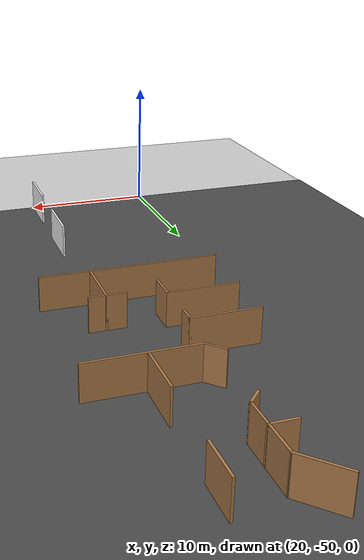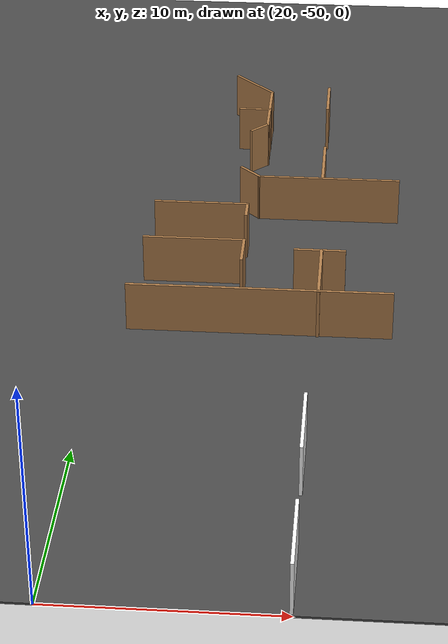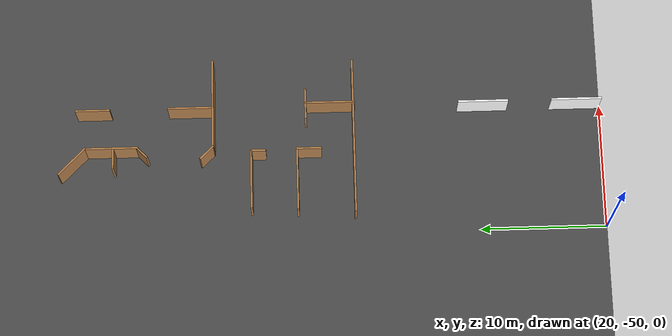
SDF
<sdf version="1.6">
 <world name="default">
  <model name="ground_plane">
   <static>1</static>
   <link name="link">
    <collision name="collision">
     <geometry><plane><normal>0 0 1</normal><size>100 100</size></plane></geometry>
     <surface><friction><ode><mu>100</mu><mu2>50</mu2></ode></friction></surface>
    </collision>
    <visual name="visual">
     <cast_shadows>0</cast_shadows>
     <geometry><plane><normal>0 0 1</normal><size>100 100</size></plane></geometry>
     <material>
      <script><uri>file://media/materials/scripts/gazebo.material</uri><name>Gazebo/Grey</name></script>
     </material>
    </visual>
   </link>
  </model>
  <model name="asphalt_plane">
   <static>1</static>
   <link name="link">
    <collision name="collision"><geometry><box><size>100 100 0.1</size></box></geometry></collision>
    <visual name="visual">
     <cast_shadows>0</cast_shadows>
     <geometry><box><size>100 100 0.1</size></box></geometry>
     <material>
      <script>
       <uri>model://asphalt_plane/materials/scripts</uri>
       <uri>model://asphalt_plane/materials/textures</uri>
       <name>vrc/asphalt</name>
      </script>
     </material>
    </visual>
   </link>
  </model>
  <model name="Medium_wall_wall_1">
   <pose>29.9233 -40.4954 0 0 -0 1.57079</pose>
   <link name="Wall_0">
    <collision name="Wall_0_Collision">
     <geometry><box><size>4 0.15 2.5</size></box></geometry>
     <pose>0 0 1.25 0 -0 0</pose>
    </collision>
    <visual name="Wall_0_Visual">
     <pose>0 0 1.25 0 -0 0</pose>
     <geometry><box><size>4 0.15 2.5</size></box></geometry>
     <material>
      <script><uri>file://media/materials/scripts/gazebo.material</uri><name>Gazebo/Medium_walls</name></script>
      <ambient>1 1 1 1</ambient>
     </material>
     <meta><layer>0</layer></meta>
    </visual>
   </link>
   <static>1</static>
  </model>
  <model name="Medium_wall_wall_1_clone">
   <pose>29.9233 -47.9139 0 0 -0 1.57079</pose>
   <link name="Wall_0">
    <collision name="Wall_0_Collision">
     <geometry><box><size>4 0.15 2.5</size></box></geometry>
     <pose>0 0 1.25 0 -0 0</pose>
    </collision>
    <visual name="Wall_0_Visual">
     <pose>0 0 1.25 0 -0 0</pose>
     <geometry><box><size>4 0.15 2.5</size></box></geometry>
     <material>
      <script><uri>file://media/materials/scripts/gazebo.material</uri><name>Gazebo/Medium_walls</name></script>
      <ambient>1 1 1 1</ambient>
     </material>
     <meta><layer>0</layer></meta>
    </visual>
   </link>
   <static>1</static>
  </model>
  <model name="Soft_wall_v1_1">
   <pose>-14.3408 -3.86286 0 0 -0 0</pose>
   <link name="Wall_347">
    <collision name="Wall_347_Collision">
     <geometry><box><size>12.5 0.15 2.5</size></box></geometry>
     <pose>0 0 1.25 0 -0 0</pose>
    </collision>
    <visual name="Wall_347_Visual">
     <pose>0 0 1.25 0 -0 0</pose>
     <geometry><box><size>12.5 0.15 2.5</size></box></geometry>
     <material>
      <script><uri>file://media/materials/scripts/gazebo.material</uri><name>Gazebo/Wood</name></script>
      <ambient>1 1 1 1</ambient>
     </material>
     <meta><layer>0</layer></meta>
    </visual>
    <pose>41.7212 -26.2805 0 0 -0 0</pose>
   </link>
   <link name="Wall_358">
    <collision name="Wall_358_Collision">
     <geometry><box><size>7.25 0.15 2.5</size></box></geometry>
     <pose>0 0 1.25 0 -0 0</pose>
    </collision>
    <visual name="Wall_358_Visual">
     <pose>0 0 1.25 0 -0 0</pose>
     <geometry><box><size>7.25 0.15 2.5</size></box></geometry>
     <material>
      <script><uri>file://media/materials/scripts/gazebo.material</uri><name>Gazebo/Wood</name></script>
      <ambient>1 1 1 1</ambient>
     </material>
     <meta><layer>0</layer></meta>
    </visual>
    <pose>44.5601 -15.1321 0 0 -0 3.14159</pose>
   </link>
   <link name="Wall_359">
    <collision name="Wall_359_Collision">
     <geometry><box><size>1.5 0.15 2.5</size></box></geometry>
     <pose>0 0 1.25 0 -0 0</pose>
    </collision>
    <visual name="Wall_359_Visual">
     <pose>0 0 1.25 0 -0 0</pose>
     <geometry><box><size>1.5 0.15 2.5</size></box></geometry>
     <material>
      <script><uri>file://media/materials/scripts/gazebo.material</uri><name>Gazebo/Wood</name></script>
      <ambient>1 1 1 1</ambient>
     </material>
     <meta><layer>0</layer></meta>
    </visual>
    <pose>40.5328 -14.6548 0 0 -0 2.35619</pose>
   </link>
   <link name="Wall_365">
    <collision name="Wall_365_Collision">
     <geometry><box><size>2.75 0.15 2.5</size></box></geometry>
     <pose>0 0 1.25 0 -0 0</pose>
    </collision>
    <visual name="Wall_365_Visual">
     <pose>0 0 1.25 0 -0 0</pose>
     <geometry><box><size>2.75 0.15 2.5</size></box></geometry>
     <material>
      <script><uri>file://media/materials/scripts/gazebo.material</uri><name>Gazebo/Wood</name></script>
      <ambient>1 1 1 1</ambient>
     </material>
     <meta><layer>0</layer></meta>
    </visual>
    <pose>44.2273 -5.61048 0 0 0 -1.5708</pose>
   </link>
   <link name="Wall_371">
    <collision name="Wall_371_Collision">
     <geometry><box><size>3.5 0.15 2.5</size></box></geometry>
     <pose>0 0 1.25 0 -0 0</pose>
    </collision>
    <visual name="Wall_371_Visual">
     <pose>0 0 1.25 0 -0 0</pose>
     <geometry><box><size>3.5 0.15 2.5</size></box></geometry>
     <material>
      <script><uri>file://media/materials/scripts/gazebo.material</uri><name>Gazebo/Wood</name></script>
      <ambient>1 1 1 1</ambient>
     </material>
     <meta><layer>0</layer></meta>
    </visual>
    <pose>44.2528 -13.3088 0 0 0 -1.5708</pose>
   </link>
   <link name="Wall_373">
    <collision name="Wall_373_Collision">
     <geometry><box><size>3 0.15 2.5</size></box></geometry>
     <pose>0 0 1.25 0 -0 0</pose>
    </collision>
    <visual name="Wall_373_Visual">
     <pose>0 0 1.25 0 -0 0</pose>
     <geometry><box><size>3 0.15 2.5</size></box></geometry>
     <material>
      <script><uri>file://media/materials/scripts/gazebo.material</uri><name>Gazebo/Wood</name></script>
      <ambient>1 1 1 1</ambient>
     </material>
     <meta><layer>0</layer></meta>
    </visual>
    <pose>40.0527 -4.01617 0 0 0 -0.785398</pose>
   </link>
   <link name="Wall_374">
    <collision name="Wall_374_Collision">
     <geometry><box><size>4.25 0.15 2.5</size></box></geometry>
     <pose>0 0 1.25 0 -0 0</pose>
    </collision>
    <visual name="Wall_374_Visual">
     <pose>0 0 1.25 0 -0 0</pose>
     <geometry><box><size>4.25 0.15 2.5</size></box></geometry>
     <material>
      <script><uri>file://media/materials/scripts/gazebo.material</uri><name>Gazebo/Wood</name></script>
      <ambient>1 1 1 1</ambient>
     </material>
     <meta><layer>0</layer></meta>
    </visual>
    <pose>41.0604 -7.0738 0 0 0 -1.5708</pose>
   </link>
   <link name="Wall_375">
    <collision name="Wall_375_Collision">
     <geometry><box><size>1.25 0.15 2.5</size></box></geometry>
     <pose>0 0 1.25 0 -0 0</pose>
    </collision>
    <visual name="Wall_375_Visual">
     <pose>0 0 1.25 0 -0 0</pose>
     <geometry><box><size>1.25 0.15 2.5</size></box></geometry>
     <material>
      <script><uri>file://media/materials/scripts/gazebo.material</uri><name>Gazebo/Wood</name></script>
      <ambient>1 1 1 1</ambient>
     </material>
     <meta><layer>0</layer></meta>
    </visual>
    <pose>40.6715 -9.51271 0 0 0 -2.35619</pose>
   </link>
   <link name="Wall_377">
    <collision name="Wall_377_Collision">
     <geometry><box><size>1.75 0.15 2.5</size></box></geometry>
     <pose>0 0 1.25 0 -0 0</pose>
    </collision>
    <visual name="Wall_377_Visual">
     <pose>0 0 1.25 0 -0 0</pose>
     <geometry><box><size>1.75 0.15 2.5</size></box></geometry>
     <material>
      <script><uri>file://media/materials/scripts/gazebo.material</uri><name>Gazebo/Wood</name></script>
      <ambient>1 1 1 1</ambient>
     </material>
     <meta><layer>0</layer></meta>
    </visual>
    <pose>40.2794 -7.23982 0 0 -0 3.14159</pose>
   </link>
   <link name="Wall_407">
    <collision name="Wall_407_Collision">
     <geometry><box><size>5 0.15 2.5</size></box></geometry>
     <pose>0 0 1.25 0 -0 0</pose>
    </collision>
    <visual name="Wall_407_Visual">
     <pose>0 0 1.25 0 -0 0</pose>
     <geometry><box><size>5 0.15 2.5</size></box></geometry>
     <material>
      <script><uri>file://media/materials/scripts/gazebo.material</uri><name>Gazebo/Wood</name></script>
      <ambient>1 1 1 1</ambient>
     </material>
     <meta><layer>0</layer></meta>
    </visual>
    <pose>38.2728 -21.7671 0 0 -0 0</pose>
   </link>
   <link name="Wall_408">
    <collision name="Wall_408_Collision">
     <geometry><box><size>2 0.15 2.5</size></box></geometry>
     <pose>0 0 1.25 0 -0 0</pose>
    </collision>
    <visual name="Wall_408_Visual">
     <pose>0 0 1.25 0 -0 0</pose>
     <geometry><box><size>2 0.15 2.5</size></box></geometry>
     <material>
      <script><uri>file://media/materials/scripts/gazebo.material</uri><name>Gazebo/Wood</name></script>
      <ambient>1 1 1 1</ambient>
     </material>
     <meta><layer>0</layer></meta>
    </visual>
    <pose>40.6978 -22.6921 0 0 0 -1.5708</pose>
   </link>
   <link name="Wall_414">
    <collision name="Wall_414_Collision">
     <geometry><box><size>4 0.15 2.5</size></box></geometry>
     <pose>0 0 1.25 0 -0 0</pose>
    </collision>
    <visual name="Wall_414_Visual">
     <pose>0 0 1.25 0 -0 0</pose>
     <geometry><box><size>4 0.15 2.5</size></box></geometry>
     <material>
      <script><uri>file://media/materials/scripts/gazebo.material</uri><name>Gazebo/Wood</name></script>
      <ambient>1 1 1 1</ambient>
     </material>
     <meta><layer>0</layer></meta>
    </visual>
    <pose>44.4731 -24.4235 0 0 -0 1.5708</pose>
   </link>
   <link name="Wall_416">
    <collision name="Wall_416_Collision">
     <geometry><box><size>2.5 0.15 2.5</size></box></geometry>
     <pose>0 0 1.25 0 -0 0</pose>
    </collision>
    <visual name="Wall_416_Visual">
     <pose>0 0 1.25 0 -0 0</pose>
     <geometry><box><size>2.5 0.15 2.5</size></box></geometry>
     <material>
      <script><uri>file://media/materials/scripts/gazebo.material</uri><name>Gazebo/Wood</name></script>
      <ambient>1 1 1 1</ambient>
     </material>
     <meta><layer>0</layer></meta>
    </visual>
    <pose>44.3981 -22.4985 0 0 -0 3.14159</pose>
   </link>
   <link name="Wall_418">
    <collision name="Wall_418_Collision">
     <geometry><box><size>4.75 0.15 2.5</size></box></geometry>
     <pose>0 0 1.25 0 -0 0</pose>
    </collision>
    <visual name="Wall_418_Visual">
     <pose>0 0 1.25 0 -0 0</pose>
     <geometry><box><size>4.75 0.15 2.5</size></box></geometry>
     <material>
      <script><uri>file://media/materials/scripts/gazebo.material</uri><name>Gazebo/Wood</name></script>
      <ambient>1 1 1 1</ambient>
     </material>
     <meta><layer>0</layer></meta>
    </visual>
    <pose>38.3106 -18.1301 0 0 -0 0</pose>
   </link>
   <link name="Wall_419">
    <collision name="Wall_419_Collision">
     <geometry><box><size>1.25 0.15 2.5</size></box></geometry>
     <pose>0 0 1.25 0 -0 0</pose>
    </collision>
    <visual name="Wall_419_Visual">
     <pose>0 0 1.25 0 -0 0</pose>
     <geometry><box><size>1.25 0.15 2.5</size></box></geometry>
     <material>
      <script><uri>file://media/materials/scripts/gazebo.material</uri><name>Gazebo/Wood</name></script>
      <ambient>1 1 1 1</ambient>
     </material>
     <meta><layer>0</layer></meta>
    </visual>
    <pose>40.6106 -18.6801 0 0 0 -1.5708</pose>
   </link>
   <static>1</static>
  </model>
 </world>
</sdf>
